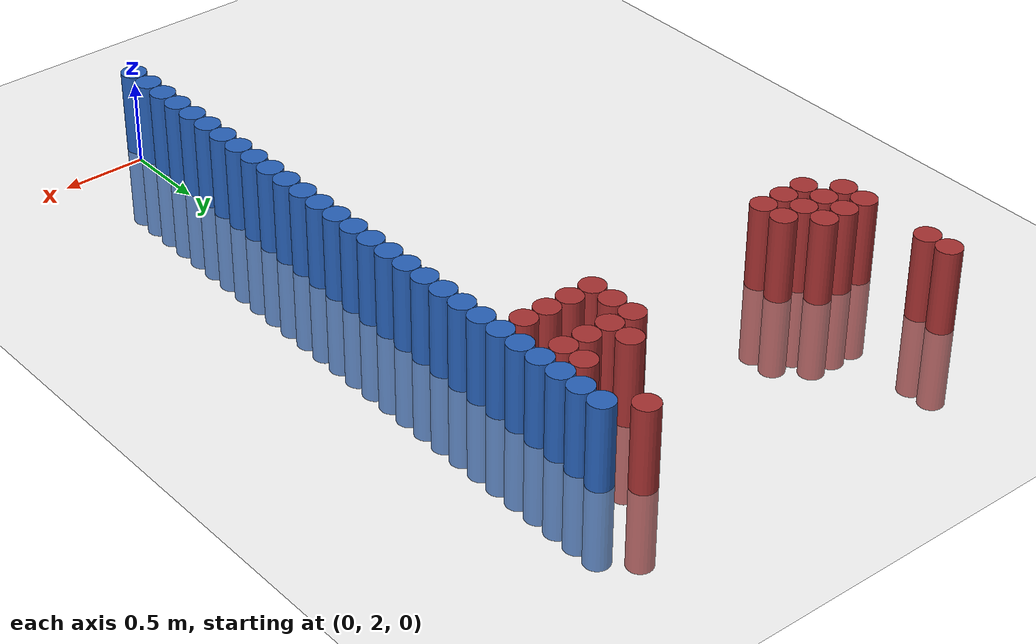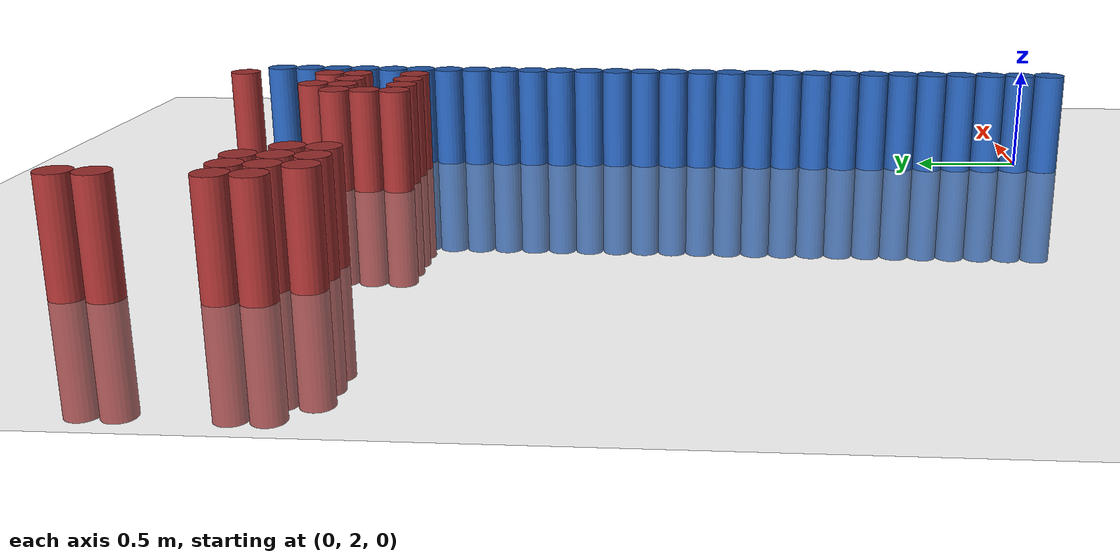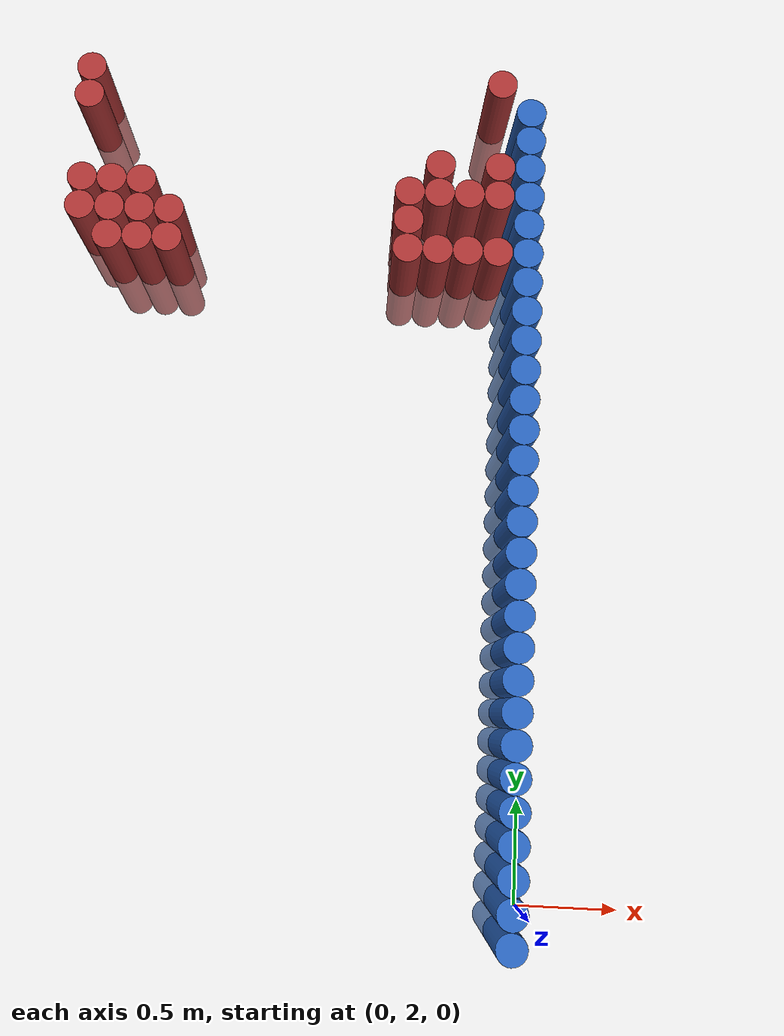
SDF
<sdf version="1.6">
 <world name="default">
  <model name="ground_plane">
   <static>1</static>
   <link name="link">
    <collision name="collision">
     <geometry><plane><normal>0 0 1</normal><size>100 100</size></plane></geometry>
     <surface><friction><ode><mu>100</mu><mu2>50</mu2></ode></friction></surface>
    </collision>
    <visual name="visual">
     <cast_shadows>0</cast_shadows>
     <geometry><plane><normal>0 0 1</normal><size>100 100</size></plane></geometry>
     <material>
      <script><uri>file://media/materials/scripts/gazebo.material</uri><name>Gazebo/Grey</name></script>
     </material>
    </visual>
   </link>
  </model>
  <model name="unit_cylinder_52">
   <static>1</static>
   <pose>-0.075000 1.875000 0.000000 0.000000 0.000000 0.000000</pose>
   <link name="link">
    <inertial>
     <mass>1</mass>
     <inertia><ixx>0.145833</ixx><ixy>0</ixy><ixz>0</ixz><iyy>0.145833</iyy><iyz>0</iyz><izz>0.125</izz></inertia>
    </inertial>
    <collision name="collision">
     <geometry><cylinder><radius>0.075000</radius><length>1</length></cylinder></geometry>
    </collision>
    <visual name="visual">
     <geometry><cylinder><radius>0.075000</radius><length>1</length></cylinder></geometry>
     <material>
      <ambient>0.152000 0.379000 0.720000 1</ambient>
      <diffuse>0.152000 0.379000 0.720000 1</diffuse>
     </material>
     <material>
      <script><name>Gazebo/Grey</name><uri>file://media/materials/scripts/gazebo.material</uri></script>
     </material>
    </visual>
   </link>
  </model>
  <model name="unit_cylinder_54">
   <static>1</static>
   <pose>-0.075000 2.025000 0.000000 0.000000 0.000000 0.000000</pose>
   <link name="link">
    <inertial>
     <mass>1</mass>
     <inertia><ixx>0.145833</ixx><ixy>0</ixy><ixz>0</ixz><iyy>0.145833</iyy><iyz>0</iyz><izz>0.125</izz></inertia>
    </inertial>
    <collision name="collision">
     <geometry><cylinder><radius>0.075000</radius><length>1</length></cylinder></geometry>
    </collision>
    <visual name="visual">
     <geometry><cylinder><radius>0.075000</radius><length>1</length></cylinder></geometry>
     <material>
      <ambient>0.152000 0.379000 0.720000 1</ambient>
      <diffuse>0.152000 0.379000 0.720000 1</diffuse>
     </material>
     <material>
      <script><name>Gazebo/Grey</name><uri>file://media/materials/scripts/gazebo.material</uri></script>
     </material>
    </visual>
   </link>
  </model>
  <model name="unit_cylinder_56">
   <static>1</static>
   <pose>-0.075000 2.175000 0.000000 0.000000 0.000000 0.000000</pose>
   <link name="link">
    <inertial>
     <mass>1</mass>
     <inertia><ixx>0.145833</ixx><ixy>0</ixy><ixz>0</ixz><iyy>0.145833</iyy><iyz>0</iyz><izz>0.125</izz></inertia>
    </inertial>
    <collision name="collision">
     <geometry><cylinder><radius>0.075000</radius><length>1</length></cylinder></geometry>
    </collision>
    <visual name="visual">
     <geometry><cylinder><radius>0.075000</radius><length>1</length></cylinder></geometry>
     <material>
      <ambient>0.152000 0.379000 0.720000 1</ambient>
      <diffuse>0.152000 0.379000 0.720000 1</diffuse>
     </material>
     <material>
      <script><name>Gazebo/Grey</name><uri>file://media/materials/scripts/gazebo.material</uri></script>
     </material>
    </visual>
   </link>
  </model>
  <model name="unit_cylinder_58">
   <static>1</static>
   <pose>-0.075000 2.325000 0.000000 0.000000 0.000000 0.000000</pose>
   <link name="link">
    <inertial>
     <mass>1</mass>
     <inertia><ixx>0.145833</ixx><ixy>0</ixy><ixz>0</ixz><iyy>0.145833</iyy><iyz>0</iyz><izz>0.125</izz></inertia>
    </inertial>
    <collision name="collision">
     <geometry><cylinder><radius>0.075000</radius><length>1</length></cylinder></geometry>
    </collision>
    <visual name="visual">
     <geometry><cylinder><radius>0.075000</radius><length>1</length></cylinder></geometry>
     <material>
      <ambient>0.152000 0.379000 0.720000 1</ambient>
      <diffuse>0.152000 0.379000 0.720000 1</diffuse>
     </material>
     <material>
      <script><name>Gazebo/Grey</name><uri>file://media/materials/scripts/gazebo.material</uri></script>
     </material>
    </visual>
   </link>
  </model>
  <model name="unit_cylinder_60">
   <static>1</static>
   <pose>-0.075000 2.475000 0.000000 0.000000 0.000000 0.000000</pose>
   <link name="link">
    <inertial>
     <mass>1</mass>
     <inertia><ixx>0.145833</ixx><ixy>0</ixy><ixz>0</ixz><iyy>0.145833</iyy><iyz>0</iyz><izz>0.125</izz></inertia>
    </inertial>
    <collision name="collision">
     <geometry><cylinder><radius>0.075000</radius><length>1</length></cylinder></geometry>
    </collision>
    <visual name="visual">
     <geometry><cylinder><radius>0.075000</radius><length>1</length></cylinder></geometry>
     <material>
      <ambient>0.152000 0.379000 0.720000 1</ambient>
      <diffuse>0.152000 0.379000 0.720000 1</diffuse>
     </material>
     <material>
      <script><name>Gazebo/Grey</name><uri>file://media/materials/scripts/gazebo.material</uri></script>
     </material>
    </visual>
   </link>
  </model>
  <model name="unit_cylinder_62">
   <static>1</static>
   <pose>-0.075000 2.625000 0.000000 0.000000 0.000000 0.000000</pose>
   <link name="link">
    <inertial>
     <mass>1</mass>
     <inertia><ixx>0.145833</ixx><ixy>0</ixy><ixz>0</ixz><iyy>0.145833</iyy><iyz>0</iyz><izz>0.125</izz></inertia>
    </inertial>
    <collision name="collision">
     <geometry><cylinder><radius>0.075000</radius><length>1</length></cylinder></geometry>
    </collision>
    <visual name="visual">
     <geometry><cylinder><radius>0.075000</radius><length>1</length></cylinder></geometry>
     <material>
      <ambient>0.152000 0.379000 0.720000 1</ambient>
      <diffuse>0.152000 0.379000 0.720000 1</diffuse>
     </material>
     <material>
      <script><name>Gazebo/Grey</name><uri>file://media/materials/scripts/gazebo.material</uri></script>
     </material>
    </visual>
   </link>
  </model>
  <model name="unit_cylinder_64">
   <static>1</static>
   <pose>-0.075000 2.775000 0.000000 0.000000 0.000000 0.000000</pose>
   <link name="link">
    <inertial>
     <mass>1</mass>
     <inertia><ixx>0.145833</ixx><ixy>0</ixy><ixz>0</ixz><iyy>0.145833</iyy><iyz>0</iyz><izz>0.125</izz></inertia>
    </inertial>
    <collision name="collision">
     <geometry><cylinder><radius>0.075000</radius><length>1</length></cylinder></geometry>
    </collision>
    <visual name="visual">
     <geometry><cylinder><radius>0.075000</radius><length>1</length></cylinder></geometry>
     <material>
      <ambient>0.152000 0.379000 0.720000 1</ambient>
      <diffuse>0.152000 0.379000 0.720000 1</diffuse>
     </material>
     <material>
      <script><name>Gazebo/Grey</name><uri>file://media/materials/scripts/gazebo.material</uri></script>
     </material>
    </visual>
   </link>
  </model>
  <model name="unit_cylinder_66">
   <static>1</static>
   <pose>-0.075000 2.925000 0.000000 0.000000 0.000000 0.000000</pose>
   <link name="link">
    <inertial>
     <mass>1</mass>
     <inertia><ixx>0.145833</ixx><ixy>0</ixy><ixz>0</ixz><iyy>0.145833</iyy><iyz>0</iyz><izz>0.125</izz></inertia>
    </inertial>
    <collision name="collision">
     <geometry><cylinder><radius>0.075000</radius><length>1</length></cylinder></geometry>
    </collision>
    <visual name="visual">
     <geometry><cylinder><radius>0.075000</radius><length>1</length></cylinder></geometry>
     <material>
      <ambient>0.152000 0.379000 0.720000 1</ambient>
      <diffuse>0.152000 0.379000 0.720000 1</diffuse>
     </material>
     <material>
      <script><name>Gazebo/Grey</name><uri>file://media/materials/scripts/gazebo.material</uri></script>
     </material>
    </visual>
   </link>
  </model>
  <model name="unit_cylinder_68">
   <static>1</static>
   <pose>-0.075000 3.075000 0.000000 0.000000 0.000000 0.000000</pose>
   <link name="link">
    <inertial>
     <mass>1</mass>
     <inertia><ixx>0.145833</ixx><ixy>0</ixy><ixz>0</ixz><iyy>0.145833</iyy><iyz>0</iyz><izz>0.125</izz></inertia>
    </inertial>
    <collision name="collision">
     <geometry><cylinder><radius>0.075000</radius><length>1</length></cylinder></geometry>
    </collision>
    <visual name="visual">
     <geometry><cylinder><radius>0.075000</radius><length>1</length></cylinder></geometry>
     <material>
      <ambient>0.152000 0.379000 0.720000 1</ambient>
      <diffuse>0.152000 0.379000 0.720000 1</diffuse>
     </material>
     <material>
      <script><name>Gazebo/Grey</name><uri>file://media/materials/scripts/gazebo.material</uri></script>
     </material>
    </visual>
   </link>
  </model>
  <model name="unit_cylinder_70">
   <static>1</static>
   <pose>-0.075000 3.225000 0.000000 0.000000 0.000000 0.000000</pose>
   <link name="link">
    <inertial>
     <mass>1</mass>
     <inertia><ixx>0.145833</ixx><ixy>0</ixy><ixz>0</ixz><iyy>0.145833</iyy><iyz>0</iyz><izz>0.125</izz></inertia>
    </inertial>
    <collision name="collision">
     <geometry><cylinder><radius>0.075000</radius><length>1</length></cylinder></geometry>
    </collision>
    <visual name="visual">
     <geometry><cylinder><radius>0.075000</radius><length>1</length></cylinder></geometry>
     <material>
      <ambient>0.152000 0.379000 0.720000 1</ambient>
      <diffuse>0.152000 0.379000 0.720000 1</diffuse>
     </material>
     <material>
      <script><name>Gazebo/Grey</name><uri>file://media/materials/scripts/gazebo.material</uri></script>
     </material>
    </visual>
   </link>
  </model>
  <model name="unit_cylinder_72">
   <static>1</static>
   <pose>-0.075000 3.375000 0.000000 0.000000 0.000000 0.000000</pose>
   <link name="link">
    <inertial>
     <mass>1</mass>
     <inertia><ixx>0.145833</ixx><ixy>0</ixy><ixz>0</ixz><iyy>0.145833</iyy><iyz>0</iyz><izz>0.125</izz></inertia>
    </inertial>
    <collision name="collision">
     <geometry><cylinder><radius>0.075000</radius><length>1</length></cylinder></geometry>
    </collision>
    <visual name="visual">
     <geometry><cylinder><radius>0.075000</radius><length>1</length></cylinder></geometry>
     <material>
      <ambient>0.152000 0.379000 0.720000 1</ambient>
      <diffuse>0.152000 0.379000 0.720000 1</diffuse>
     </material>
     <material>
      <script><name>Gazebo/Grey</name><uri>file://media/materials/scripts/gazebo.material</uri></script>
     </material>
    </visual>
   </link>
  </model>
  <model name="unit_cylinder_74">
   <static>1</static>
   <pose>-0.075000 3.525000 0.000000 0.000000 0.000000 0.000000</pose>
   <link name="link">
    <inertial>
     <mass>1</mass>
     <inertia><ixx>0.145833</ixx><ixy>0</ixy><ixz>0</ixz><iyy>0.145833</iyy><iyz>0</iyz><izz>0.125</izz></inertia>
    </inertial>
    <collision name="collision">
     <geometry><cylinder><radius>0.075000</radius><length>1</length></cylinder></geometry>
    </collision>
    <visual name="visual">
     <geometry><cylinder><radius>0.075000</radius><length>1</length></cylinder></geometry>
     <material>
      <ambient>0.152000 0.379000 0.720000 1</ambient>
      <diffuse>0.152000 0.379000 0.720000 1</diffuse>
     </material>
     <material>
      <script><name>Gazebo/Grey</name><uri>file://media/materials/scripts/gazebo.material</uri></script>
     </material>
    </visual>
   </link>
  </model>
  <model name="unit_cylinder_76">
   <static>1</static>
   <pose>-0.075000 3.675000 0.000000 0.000000 0.000000 0.000000</pose>
   <link name="link">
    <inertial>
     <mass>1</mass>
     <inertia><ixx>0.145833</ixx><ixy>0</ixy><ixz>0</ixz><iyy>0.145833</iyy><iyz>0</iyz><izz>0.125</izz></inertia>
    </inertial>
    <collision name="collision">
     <geometry><cylinder><radius>0.075000</radius><length>1</length></cylinder></geometry>
    </collision>
    <visual name="visual">
     <geometry><cylinder><radius>0.075000</radius><length>1</length></cylinder></geometry>
     <material>
      <ambient>0.152000 0.379000 0.720000 1</ambient>
      <diffuse>0.152000 0.379000 0.720000 1</diffuse>
     </material>
     <material>
      <script><name>Gazebo/Grey</name><uri>file://media/materials/scripts/gazebo.material</uri></script>
     </material>
    </visual>
   </link>
  </model>
  <model name="unit_cylinder_78">
   <static>1</static>
   <pose>-0.075000 3.825000 0.000000 0.000000 0.000000 0.000000</pose>
   <link name="link">
    <inertial>
     <mass>1</mass>
     <inertia><ixx>0.145833</ixx><ixy>0</ixy><ixz>0</ixz><iyy>0.145833</iyy><iyz>0</iyz><izz>0.125</izz></inertia>
    </inertial>
    <collision name="collision">
     <geometry><cylinder><radius>0.075000</radius><length>1</length></cylinder></geometry>
    </collision>
    <visual name="visual">
     <geometry><cylinder><radius>0.075000</radius><length>1</length></cylinder></geometry>
     <material>
      <ambient>0.152000 0.379000 0.720000 1</ambient>
      <diffuse>0.152000 0.379000 0.720000 1</diffuse>
     </material>
     <material>
      <script><name>Gazebo/Grey</name><uri>file://media/materials/scripts/gazebo.material</uri></script>
     </material>
    </visual>
   </link>
  </model>
  <model name="unit_cylinder_80">
   <static>1</static>
   <pose>-0.075000 3.975000 0.000000 0.000000 0.000000 0.000000</pose>
   <link name="link">
    <inertial>
     <mass>1</mass>
     <inertia><ixx>0.145833</ixx><ixy>0</ixy><ixz>0</ixz><iyy>0.145833</iyy><iyz>0</iyz><izz>0.125</izz></inertia>
    </inertial>
    <collision name="collision">
     <geometry><cylinder><radius>0.075000</radius><length>1</length></cylinder></geometry>
    </collision>
    <visual name="visual">
     <geometry><cylinder><radius>0.075000</radius><length>1</length></cylinder></geometry>
     <material>
      <ambient>0.152000 0.379000 0.720000 1</ambient>
      <diffuse>0.152000 0.379000 0.720000 1</diffuse>
     </material>
     <material>
      <script><name>Gazebo/Grey</name><uri>file://media/materials/scripts/gazebo.material</uri></script>
     </material>
    </visual>
   </link>
  </model>
  <model name="unit_cylinder_82">
   <static>1</static>
   <pose>-0.075000 4.125000 0.000000 0.000000 0.000000 0.000000</pose>
   <link name="link">
    <inertial>
     <mass>1</mass>
     <inertia><ixx>0.145833</ixx><ixy>0</ixy><ixz>0</ixz><iyy>0.145833</iyy><iyz>0</iyz><izz>0.125</izz></inertia>
    </inertial>
    <collision name="collision">
     <geometry><cylinder><radius>0.075000</radius><length>1</length></cylinder></geometry>
    </collision>
    <visual name="visual">
     <geometry><cylinder><radius>0.075000</radius><length>1</length></cylinder></geometry>
     <material>
      <ambient>0.152000 0.379000 0.720000 1</ambient>
      <diffuse>0.152000 0.379000 0.720000 1</diffuse>
     </material>
     <material>
      <script><name>Gazebo/Grey</name><uri>file://media/materials/scripts/gazebo.material</uri></script>
     </material>
    </visual>
   </link>
  </model>
  <model name="unit_cylinder_84">
   <static>1</static>
   <pose>-0.075000 4.275000 0.000000 0.000000 0.000000 0.000000</pose>
   <link name="link">
    <inertial>
     <mass>1</mass>
     <inertia><ixx>0.145833</ixx><ixy>0</ixy><ixz>0</ixz><iyy>0.145833</iyy><iyz>0</iyz><izz>0.125</izz></inertia>
    </inertial>
    <collision name="collision">
     <geometry><cylinder><radius>0.075000</radius><length>1</length></cylinder></geometry>
    </collision>
    <visual name="visual">
     <geometry><cylinder><radius>0.075000</radius><length>1</length></cylinder></geometry>
     <material>
      <ambient>0.152000 0.379000 0.720000 1</ambient>
      <diffuse>0.152000 0.379000 0.720000 1</diffuse>
     </material>
     <material>
      <script><name>Gazebo/Grey</name><uri>file://media/materials/scripts/gazebo.material</uri></script>
     </material>
    </visual>
   </link>
  </model>
  <model name="unit_cylinder_86">
   <static>1</static>
   <pose>-0.075000 4.425000 0.000000 0.000000 0.000000 0.000000</pose>
   <link name="link">
    <inertial>
     <mass>1</mass>
     <inertia><ixx>0.145833</ixx><ixy>0</ixy><ixz>0</ixz><iyy>0.145833</iyy><iyz>0</iyz><izz>0.125</izz></inertia>
    </inertial>
    <collision name="collision">
     <geometry><cylinder><radius>0.075000</radius><length>1</length></cylinder></geometry>
    </collision>
    <visual name="visual">
     <geometry><cylinder><radius>0.075000</radius><length>1</length></cylinder></geometry>
     <material>
      <ambient>0.152000 0.379000 0.720000 1</ambient>
      <diffuse>0.152000 0.379000 0.720000 1</diffuse>
     </material>
     <material>
      <script><name>Gazebo/Grey</name><uri>file://media/materials/scripts/gazebo.material</uri></script>
     </material>
    </visual>
   </link>
  </model>
  <model name="unit_cylinder_88">
   <static>1</static>
   <pose>-0.075000 4.575000 0.000000 0.000000 0.000000 0.000000</pose>
   <link name="link">
    <inertial>
     <mass>1</mass>
     <inertia><ixx>0.145833</ixx><ixy>0</ixy><ixz>0</ixz><iyy>0.145833</iyy><iyz>0</iyz><izz>0.125</izz></inertia>
    </inertial>
    <collision name="collision">
     <geometry><cylinder><radius>0.075000</radius><length>1</length></cylinder></geometry>
    </collision>
    <visual name="visual">
     <geometry><cylinder><radius>0.075000</radius><length>1</length></cylinder></geometry>
     <material>
      <ambient>0.152000 0.379000 0.720000 1</ambient>
      <diffuse>0.152000 0.379000 0.720000 1</diffuse>
     </material>
     <material>
      <script><name>Gazebo/Grey</name><uri>file://media/materials/scripts/gazebo.material</uri></script>
     </material>
    </visual>
   </link>
  </model>
  <model name="unit_cylinder_90">
   <static>1</static>
   <pose>-0.075000 4.725000 0.000000 0.000000 0.000000 0.000000</pose>
   <link name="link">
    <inertial>
     <mass>1</mass>
     <inertia><ixx>0.145833</ixx><ixy>0</ixy><ixz>0</ixz><iyy>0.145833</iyy><iyz>0</iyz><izz>0.125</izz></inertia>
    </inertial>
    <collision name="collision">
     <geometry><cylinder><radius>0.075000</radius><length>1</length></cylinder></geometry>
    </collision>
    <visual name="visual">
     <geometry><cylinder><radius>0.075000</radius><length>1</length></cylinder></geometry>
     <material>
      <ambient>0.152000 0.379000 0.720000 1</ambient>
      <diffuse>0.152000 0.379000 0.720000 1</diffuse>
     </material>
     <material>
      <script><name>Gazebo/Grey</name><uri>file://media/materials/scripts/gazebo.material</uri></script>
     </material>
    </visual>
   </link>
  </model>
  <model name="unit_cylinder_92">
   <static>1</static>
   <pose>-0.075000 4.875000 0.000000 0.000000 0.000000 0.000000</pose>
   <link name="link">
    <inertial>
     <mass>1</mass>
     <inertia><ixx>0.145833</ixx><ixy>0</ixy><ixz>0</ixz><iyy>0.145833</iyy><iyz>0</iyz><izz>0.125</izz></inertia>
    </inertial>
    <collision name="collision">
     <geometry><cylinder><radius>0.075000</radius><length>1</length></cylinder></geometry>
    </collision>
    <visual name="visual">
     <geometry><cylinder><radius>0.075000</radius><length>1</length></cylinder></geometry>
     <material>
      <ambient>0.152000 0.379000 0.720000 1</ambient>
      <diffuse>0.152000 0.379000 0.720000 1</diffuse>
     </material>
     <material>
      <script><name>Gazebo/Grey</name><uri>file://media/materials/scripts/gazebo.material</uri></script>
     </material>
    </visual>
   </link>
  </model>
  <model name="unit_cylinder_94">
   <static>1</static>
   <pose>-0.075000 5.025000 0.000000 0.000000 0.000000 0.000000</pose>
   <link name="link">
    <inertial>
     <mass>1</mass>
     <inertia><ixx>0.145833</ixx><ixy>0</ixy><ixz>0</ixz><iyy>0.145833</iyy><iyz>0</iyz><izz>0.125</izz></inertia>
    </inertial>
    <collision name="collision">
     <geometry><cylinder><radius>0.075000</radius><length>1</length></cylinder></geometry>
    </collision>
    <visual name="visual">
     <geometry><cylinder><radius>0.075000</radius><length>1</length></cylinder></geometry>
     <material>
      <ambient>0.152000 0.379000 0.720000 1</ambient>
      <diffuse>0.152000 0.379000 0.720000 1</diffuse>
     </material>
     <material>
      <script><name>Gazebo/Grey</name><uri>file://media/materials/scripts/gazebo.material</uri></script>
     </material>
    </visual>
   </link>
  </model>
  <model name="unit_cylinder_220">
   <static>1</static>
   <pose>-2.325000 5.325000 0.000000 0.000000 0.000000 0.000000</pose>
   <link name="link">
    <inertial>
     <mass>1</mass>
     <inertia><ixx>0.145833</ixx><ixy>0</ixy><ixz>0</ixz><iyy>0.145833</iyy><iyz>0</iyz><izz>0.125</izz></inertia>
    </inertial>
    <collision name="collision">
     <geometry><cylinder><radius>0.075000</radius><length>1</length></cylinder></geometry>
    </collision>
    <visual name="visual">
     <geometry><cylinder><radius>0.075000</radius><length>1</length></cylinder></geometry>
     <material>
      <ambient>0.648000 0.192000 0.192000 1</ambient>
      <diffuse>0.648000 0.192000 0.192000 1</diffuse>
     </material>
     <material>
      <script><name>Gazebo/Grey</name><uri>file://media/materials/scripts/gazebo.material</uri></script>
     </material>
    </visual>
   </link>
  </model>
  <model name="unit_cylinder_221">
   <static>1</static>
   <pose>-2.325000 5.475000 0.000000 0.000000 0.000000 0.000000</pose>
   <link name="link">
    <inertial>
     <mass>1</mass>
     <inertia><ixx>0.145833</ixx><ixy>0</ixy><ixz>0</ixz><iyy>0.145833</iyy><iyz>0</iyz><izz>0.125</izz></inertia>
    </inertial>
    <collision name="collision">
     <geometry><cylinder><radius>0.075000</radius><length>1</length></cylinder></geometry>
    </collision>
    <visual name="visual">
     <geometry><cylinder><radius>0.075000</radius><length>1</length></cylinder></geometry>
     <material>
      <ambient>0.648000 0.192000 0.192000 1</ambient>
      <diffuse>0.648000 0.192000 0.192000 1</diffuse>
     </material>
     <material>
      <script><name>Gazebo/Grey</name><uri>file://media/materials/scripts/gazebo.material</uri></script>
     </material>
    </visual>
   </link>
  </model>
  <model name="unit_cylinder_222">
   <static>1</static>
   <pose>-2.325000 5.925000 0.000000 0.000000 0.000000 0.000000</pose>
   <link name="link">
    <inertial>
     <mass>1</mass>
     <inertia><ixx>0.145833</ixx><ixy>0</ixy><ixz>0</ixz><iyy>0.145833</iyy><iyz>0</iyz><izz>0.125</izz></inertia>
    </inertial>
    <collision name="collision">
     <geometry><cylinder><radius>0.075000</radius><length>1</length></cylinder></geometry>
    </collision>
    <visual name="visual">
     <geometry><cylinder><radius>0.075000</radius><length>1</length></cylinder></geometry>
     <material>
      <ambient>0.648000 0.192000 0.192000 1</ambient>
      <diffuse>0.648000 0.192000 0.192000 1</diffuse>
     </material>
     <material>
      <script><name>Gazebo/Grey</name><uri>file://media/materials/scripts/gazebo.material</uri></script>
     </material>
    </visual>
   </link>
  </model>
  <model name="unit_cylinder_223">
   <static>1</static>
   <pose>-2.325000 6.075000 0.000000 0.000000 0.000000 0.000000</pose>
   <link name="link">
    <inertial>
     <mass>1</mass>
     <inertia><ixx>0.145833</ixx><ixy>0</ixy><ixz>0</ixz><iyy>0.145833</iyy><iyz>0</iyz><izz>0.125</izz></inertia>
    </inertial>
    <collision name="collision">
     <geometry><cylinder><radius>0.075000</radius><length>1</length></cylinder></geometry>
    </collision>
    <visual name="visual">
     <geometry><cylinder><radius>0.075000</radius><length>1</length></cylinder></geometry>
     <material>
      <ambient>0.648000 0.192000 0.192000 1</ambient>
      <diffuse>0.648000 0.192000 0.192000 1</diffuse>
     </material>
     <material>
      <script><name>Gazebo/Grey</name><uri>file://media/materials/scripts/gazebo.material</uri></script>
     </material>
    </visual>
   </link>
  </model>
  <model name="unit_cylinder_224">
   <static>1</static>
   <pose>-2.175000 5.175000 0.000000 0.000000 0.000000 0.000000</pose>
   <link name="link">
    <inertial>
     <mass>1</mass>
     <inertia><ixx>0.145833</ixx><ixy>0</ixy><ixz>0</ixz><iyy>0.145833</iyy><iyz>0</iyz><izz>0.125</izz></inertia>
    </inertial>
    <collision name="collision">
     <geometry><cylinder><radius>0.075000</radius><length>1</length></cylinder></geometry>
    </collision>
    <visual name="visual">
     <geometry><cylinder><radius>0.075000</radius><length>1</length></cylinder></geometry>
     <material>
      <ambient>0.648000 0.192000 0.192000 1</ambient>
      <diffuse>0.648000 0.192000 0.192000 1</diffuse>
     </material>
     <material>
      <script><name>Gazebo/Grey</name><uri>file://media/materials/scripts/gazebo.material</uri></script>
     </material>
    </visual>
   </link>
  </model>
  <model name="unit_cylinder_225">
   <static>1</static>
   <pose>-2.175000 5.325000 0.000000 0.000000 0.000000 0.000000</pose>
   <link name="link">
    <inertial>
     <mass>1</mass>
     <inertia><ixx>0.145833</ixx><ixy>0</ixy><ixz>0</ixz><iyy>0.145833</iyy><iyz>0</iyz><izz>0.125</izz></inertia>
    </inertial>
    <collision name="collision">
     <geometry><cylinder><radius>0.075000</radius><length>1</length></cylinder></geometry>
    </collision>
    <visual name="visual">
     <geometry><cylinder><radius>0.075000</radius><length>1</length></cylinder></geometry>
     <material>
      <ambient>0.648000 0.192000 0.192000 1</ambient>
      <diffuse>0.648000 0.192000 0.192000 1</diffuse>
     </material>
     <material>
      <script><name>Gazebo/Grey</name><uri>file://media/materials/scripts/gazebo.material</uri></script>
     </material>
    </visual>
   </link>
  </model>
  <model name="unit_cylinder_226">
   <static>1</static>
   <pose>-2.175000 5.475000 0.000000 0.000000 0.000000 0.000000</pose>
   <link name="link">
    <inertial>
     <mass>1</mass>
     <inertia><ixx>0.145833</ixx><ixy>0</ixy><ixz>0</ixz><iyy>0.145833</iyy><iyz>0</iyz><izz>0.125</izz></inertia>
    </inertial>
    <collision name="collision">
     <geometry><cylinder><radius>0.075000</radius><length>1</length></cylinder></geometry>
    </collision>
    <visual name="visual">
     <geometry><cylinder><radius>0.075000</radius><length>1</length></cylinder></geometry>
     <material>
      <ambient>0.648000 0.192000 0.192000 1</ambient>
      <diffuse>0.648000 0.192000 0.192000 1</diffuse>
     </material>
     <material>
      <script><name>Gazebo/Grey</name><uri>file://media/materials/scripts/gazebo.material</uri></script>
     </material>
    </visual>
   </link>
  </model>
  <model name="unit_cylinder_227">
   <static>1</static>
   <pose>-2.025000 5.175000 0.000000 0.000000 0.000000 0.000000</pose>
   <link name="link">
    <inertial>
     <mass>1</mass>
     <inertia><ixx>0.145833</ixx><ixy>0</ixy><ixz>0</ixz><iyy>0.145833</iyy><iyz>0</iyz><izz>0.125</izz></inertia>
    </inertial>
    <collision name="collision">
     <geometry><cylinder><radius>0.075000</radius><length>1</length></cylinder></geometry>
    </collision>
    <visual name="visual">
     <geometry><cylinder><radius>0.075000</radius><length>1</length></cylinder></geometry>
     <material>
      <ambient>0.648000 0.192000 0.192000 1</ambient>
      <diffuse>0.648000 0.192000 0.192000 1</diffuse>
     </material>
     <material>
      <script><name>Gazebo/Grey</name><uri>file://media/materials/scripts/gazebo.material</uri></script>
     </material>
    </visual>
   </link>
  </model>
  <model name="unit_cylinder_228">
   <static>1</static>
   <pose>-2.025000 5.325000 0.000000 0.000000 0.000000 0.000000</pose>
   <link name="link">
    <inertial>
     <mass>1</mass>
     <inertia><ixx>0.145833</ixx><ixy>0</ixy><ixz>0</ixz><iyy>0.145833</iyy><iyz>0</iyz><izz>0.125</izz></inertia>
    </inertial>
    <collision name="collision">
     <geometry><cylinder><radius>0.075000</radius><length>1</length></cylinder></geometry>
    </collision>
    <visual name="visual">
     <geometry><cylinder><radius>0.075000</radius><length>1</length></cylinder></geometry>
     <material>
      <ambient>0.648000 0.192000 0.192000 1</ambient>
      <diffuse>0.648000 0.192000 0.192000 1</diffuse>
     </material>
     <material>
      <script><name>Gazebo/Grey</name><uri>file://media/materials/scripts/gazebo.material</uri></script>
     </material>
    </visual>
   </link>
  </model>
  <model name="unit_cylinder_229">
   <static>1</static>
   <pose>-2.025000 5.475000 0.000000 0.000000 0.000000 0.000000</pose>
   <link name="link">
    <inertial>
     <mass>1</mass>
     <inertia><ixx>0.145833</ixx><ixy>0</ixy><ixz>0</ixz><iyy>0.145833</iyy><iyz>0</iyz><izz>0.125</izz></inertia>
    </inertial>
    <collision name="collision">
     <geometry><cylinder><radius>0.075000</radius><length>1</length></cylinder></geometry>
    </collision>
    <visual name="visual">
     <geometry><cylinder><radius>0.075000</radius><length>1</length></cylinder></geometry>
     <material>
      <ambient>0.648000 0.192000 0.192000 1</ambient>
      <diffuse>0.648000 0.192000 0.192000 1</diffuse>
     </material>
     <material>
      <script><name>Gazebo/Grey</name><uri>file://media/materials/scripts/gazebo.material</uri></script>
     </material>
    </visual>
   </link>
  </model>
  <model name="unit_cylinder_235">
   <static>1</static>
   <pose>-1.875000 5.175000 0.000000 0.000000 0.000000 0.000000</pose>
   <link name="link">
    <inertial>
     <mass>1</mass>
     <inertia><ixx>0.145833</ixx><ixy>0</ixy><ixz>0</ixz><iyy>0.145833</iyy><iyz>0</iyz><izz>0.125</izz></inertia>
    </inertial>
    <collision name="collision">
     <geometry><cylinder><radius>0.075000</radius><length>1</length></cylinder></geometry>
    </collision>
    <visual name="visual">
     <geometry><cylinder><radius>0.075000</radius><length>1</length></cylinder></geometry>
     <material>
      <ambient>0.648000 0.192000 0.192000 1</ambient>
      <diffuse>0.648000 0.192000 0.192000 1</diffuse>
     </material>
     <material>
      <script><name>Gazebo/Grey</name><uri>file://media/materials/scripts/gazebo.material</uri></script>
     </material>
    </visual>
   </link>
  </model>
  <model name="unit_cylinder_236">
   <static>1</static>
   <pose>-1.875000 5.325000 0.000000 0.000000 0.000000 0.000000</pose>
   <link name="link">
    <inertial>
     <mass>1</mass>
     <inertia><ixx>0.145833</ixx><ixy>0</ixy><ixz>0</ixz><iyy>0.145833</iyy><iyz>0</iyz><izz>0.125</izz></inertia>
    </inertial>
    <collision name="collision">
     <geometry><cylinder><radius>0.075000</radius><length>1</length></cylinder></geometry>
    </collision>
    <visual name="visual">
     <geometry><cylinder><radius>0.075000</radius><length>1</length></cylinder></geometry>
     <material>
      <ambient>0.648000 0.192000 0.192000 1</ambient>
      <diffuse>0.648000 0.192000 0.192000 1</diffuse>
     </material>
     <material>
      <script><name>Gazebo/Grey</name><uri>file://media/materials/scripts/gazebo.material</uri></script>
     </material>
    </visual>
   </link>
  </model>
  <model name="unit_cylinder_286">
   <static>1</static>
   <pose>-0.675000 5.175000 0.000000 0.000000 0.000000 0.000000</pose>
   <link name="link">
    <inertial>
     <mass>1</mass>
     <inertia><ixx>0.145833</ixx><ixy>0</ixy><ixz>0</ixz><iyy>0.145833</iyy><iyz>0</iyz><izz>0.125</izz></inertia>
    </inertial>
    <collision name="collision">
     <geometry><cylinder><radius>0.075000</radius><length>1</length></cylinder></geometry>
    </collision>
    <visual name="visual">
     <geometry><cylinder><radius>0.075000</radius><length>1</length></cylinder></geometry>
     <material>
      <ambient>0.648000 0.192000 0.192000 1</ambient>
      <diffuse>0.648000 0.192000 0.192000 1</diffuse>
     </material>
     <material>
      <script><name>Gazebo/Grey</name><uri>file://media/materials/scripts/gazebo.material</uri></script>
     </material>
    </visual>
   </link>
  </model>
  <model name="unit_cylinder_287">
   <static>1</static>
   <pose>-0.675000 5.325000 0.000000 0.000000 0.000000 0.000000</pose>
   <link name="link">
    <inertial>
     <mass>1</mass>
     <inertia><ixx>0.145833</ixx><ixy>0</ixy><ixz>0</ixz><iyy>0.145833</iyy><iyz>0</iyz><izz>0.125</izz></inertia>
    </inertial>
    <collision name="collision">
     <geometry><cylinder><radius>0.075000</radius><length>1</length></cylinder></geometry>
    </collision>
    <visual name="visual">
     <geometry><cylinder><radius>0.075000</radius><length>1</length></cylinder></geometry>
     <material>
      <ambient>0.648000 0.192000 0.192000 1</ambient>
      <diffuse>0.648000 0.192000 0.192000 1</diffuse>
     </material>
     <material>
      <script><name>Gazebo/Grey</name><uri>file://media/materials/scripts/gazebo.material</uri></script>
     </material>
    </visual>
   </link>
  </model>
  <model name="unit_cylinder_288">
   <static>1</static>
   <pose>-0.675000 5.475000 0.000000 0.000000 0.000000 0.000000</pose>
   <link name="link">
    <inertial>
     <mass>1</mass>
     <inertia><ixx>0.145833</ixx><ixy>0</ixy><ixz>0</ixz><iyy>0.145833</iyy><iyz>0</iyz><izz>0.125</izz></inertia>
    </inertial>
    <collision name="collision">
     <geometry><cylinder><radius>0.075000</radius><length>1</length></cylinder></geometry>
    </collision>
    <visual name="visual">
     <geometry><cylinder><radius>0.075000</radius><length>1</length></cylinder></geometry>
     <material>
      <ambient>0.648000 0.192000 0.192000 1</ambient>
      <diffuse>0.648000 0.192000 0.192000 1</diffuse>
     </material>
     <material>
      <script><name>Gazebo/Grey</name><uri>file://media/materials/scripts/gazebo.material</uri></script>
     </material>
    </visual>
   </link>
  </model>
  <model name="unit_cylinder_298">
   <static>1</static>
   <pose>-0.525000 5.175000 0.000000 0.000000 0.000000 0.000000</pose>
   <link name="link">
    <inertial>
     <mass>1</mass>
     <inertia><ixx>0.145833</ixx><ixy>0</ixy><ixz>0</ixz><iyy>0.145833</iyy><iyz>0</iyz><izz>0.125</izz></inertia>
    </inertial>
    <collision name="collision">
     <geometry><cylinder><radius>0.075000</radius><length>1</length></cylinder></geometry>
    </collision>
    <visual name="visual">
     <geometry><cylinder><radius>0.075000</radius><length>1</length></cylinder></geometry>
     <material>
      <ambient>0.648000 0.192000 0.192000 1</ambient>
      <diffuse>0.648000 0.192000 0.192000 1</diffuse>
     </material>
     <material>
      <script><name>Gazebo/Grey</name><uri>file://media/materials/scripts/gazebo.material</uri></script>
     </material>
    </visual>
   </link>
  </model>
  <model name="unit_cylinder_299">
   <static>1</static>
   <pose>-0.525000 5.475000 0.000000 0.000000 0.000000 0.000000</pose>
   <link name="link">
    <inertial>
     <mass>1</mass>
     <inertia><ixx>0.145833</ixx><ixy>0</ixy><ixz>0</ixz><iyy>0.145833</iyy><iyz>0</iyz><izz>0.125</izz></inertia>
    </inertial>
    <collision name="collision">
     <geometry><cylinder><radius>0.075000</radius><length>1</length></cylinder></geometry>
    </collision>
    <visual name="visual">
     <geometry><cylinder><radius>0.075000</radius><length>1</length></cylinder></geometry>
     <material>
      <ambient>0.648000 0.192000 0.192000 1</ambient>
      <diffuse>0.648000 0.192000 0.192000 1</diffuse>
     </material>
     <material>
      <script><name>Gazebo/Grey</name><uri>file://media/materials/scripts/gazebo.material</uri></script>
     </material>
    </visual>
   </link>
  </model>
  <model name="unit_cylinder_300">
   <static>1</static>
   <pose>-0.525000 5.625000 0.000000 0.000000 0.000000 0.000000</pose>
   <link name="link">
    <inertial>
     <mass>1</mass>
     <inertia><ixx>0.145833</ixx><ixy>0</ixy><ixz>0</ixz><iyy>0.145833</iyy><iyz>0</iyz><izz>0.125</izz></inertia>
    </inertial>
    <collision name="collision">
     <geometry><cylinder><radius>0.075000</radius><length>1</length></cylinder></geometry>
    </collision>
    <visual name="visual">
     <geometry><cylinder><radius>0.075000</radius><length>1</length></cylinder></geometry>
     <material>
      <ambient>0.648000 0.192000 0.192000 1</ambient>
      <diffuse>0.648000 0.192000 0.192000 1</diffuse>
     </material>
     <material>
      <script><name>Gazebo/Grey</name><uri>file://media/materials/scripts/gazebo.material</uri></script>
     </material>
    </visual>
   </link>
  </model>
  <model name="unit_cylinder_309">
   <static>1</static>
   <pose>-0.375000 5.175000 0.000000 0.000000 0.000000 0.000000</pose>
   <link name="link">
    <inertial>
     <mass>1</mass>
     <inertia><ixx>0.145833</ixx><ixy>0</ixy><ixz>0</ixz><iyy>0.145833</iyy><iyz>0</iyz><izz>0.125</izz></inertia>
    </inertial>
    <collision name="collision">
     <geometry><cylinder><radius>0.075000</radius><length>1</length></cylinder></geometry>
    </collision>
    <visual name="visual">
     <geometry><cylinder><radius>0.075000</radius><length>1</length></cylinder></geometry>
     <material>
      <ambient>0.648000 0.192000 0.192000 1</ambient>
      <diffuse>0.648000 0.192000 0.192000 1</diffuse>
     </material>
     <material>
      <script><name>Gazebo/Grey</name><uri>file://media/materials/scripts/gazebo.material</uri></script>
     </material>
    </visual>
   </link>
  </model>
  <model name="unit_cylinder_310">
   <static>1</static>
   <pose>-0.375000 5.475000 0.000000 0.000000 0.000000 0.000000</pose>
   <link name="link">
    <inertial>
     <mass>1</mass>
     <inertia><ixx>0.145833</ixx><ixy>0</ixy><ixz>0</ixz><iyy>0.145833</iyy><iyz>0</iyz><izz>0.125</izz></inertia>
    </inertial>
    <collision name="collision">
     <geometry><cylinder><radius>0.075000</radius><length>1</length></cylinder></geometry>
    </collision>
    <visual name="visual">
     <geometry><cylinder><radius>0.075000</radius><length>1</length></cylinder></geometry>
     <material>
      <ambient>0.648000 0.192000 0.192000 1</ambient>
      <diffuse>0.648000 0.192000 0.192000 1</diffuse>
     </material>
     <material>
      <script><name>Gazebo/Grey</name><uri>file://media/materials/scripts/gazebo.material</uri></script>
     </material>
    </visual>
   </link>
  </model>
  <model name="unit_cylinder_319">
   <static>1</static>
   <pose>-0.225000 5.175000 0.000000 0.000000 0.000000 0.000000</pose>
   <link name="link">
    <inertial>
     <mass>1</mass>
     <inertia><ixx>0.145833</ixx><ixy>0</ixy><ixz>0</ixz><iyy>0.145833</iyy><iyz>0</iyz><izz>0.125</izz></inertia>
    </inertial>
    <collision name="collision">
     <geometry><cylinder><radius>0.075000</radius><length>1</length></cylinder></geometry>
    </collision>
    <visual name="visual">
     <geometry><cylinder><radius>0.075000</radius><length>1</length></cylinder></geometry>
     <material>
      <ambient>0.648000 0.192000 0.192000 1</ambient>
      <diffuse>0.648000 0.192000 0.192000 1</diffuse>
     </material>
     <material>
      <script><name>Gazebo/Grey</name><uri>file://media/materials/scripts/gazebo.material</uri></script>
     </material>
    </visual>
   </link>
  </model>
  <model name="unit_cylinder_320">
   <static>1</static>
   <pose>-0.225000 5.475000 0.000000 0.000000 0.000000 0.000000</pose>
   <link name="link">
    <inertial>
     <mass>1</mass>
     <inertia><ixx>0.145833</ixx><ixy>0</ixy><ixz>0</ixz><iyy>0.145833</iyy><iyz>0</iyz><izz>0.125</izz></inertia>
    </inertial>
    <collision name="collision">
     <geometry><cylinder><radius>0.075000</radius><length>1</length></cylinder></geometry>
    </collision>
    <visual name="visual">
     <geometry><cylinder><radius>0.075000</radius><length>1</length></cylinder></geometry>
     <material>
      <ambient>0.648000 0.192000 0.192000 1</ambient>
      <diffuse>0.648000 0.192000 0.192000 1</diffuse>
     </material>
     <material>
      <script><name>Gazebo/Grey</name><uri>file://media/materials/scripts/gazebo.material</uri></script>
     </material>
    </visual>
   </link>
  </model>
  <model name="unit_cylinder_321">
   <static>1</static>
   <pose>-0.225000 5.625000 0.000000 0.000000 0.000000 0.000000</pose>
   <link name="link">
    <inertial>
     <mass>1</mass>
     <inertia><ixx>0.145833</ixx><ixy>0</ixy><ixz>0</ixz><iyy>0.145833</iyy><iyz>0</iyz><izz>0.125</izz></inertia>
    </inertial>
    <collision name="collision">
     <geometry><cylinder><radius>0.075000</radius><length>1</length></cylinder></geometry>
    </collision>
    <visual name="visual">
     <geometry><cylinder><radius>0.075000</radius><length>1</length></cylinder></geometry>
     <material>
      <ambient>0.648000 0.192000 0.192000 1</ambient>
      <diffuse>0.648000 0.192000 0.192000 1</diffuse>
     </material>
     <material>
      <script><name>Gazebo/Grey</name><uri>file://media/materials/scripts/gazebo.material</uri></script>
     </material>
    </visual>
   </link>
  </model>
  <model name="unit_cylinder_322">
   <static>1</static>
   <pose>-0.225000 6.075000 0.000000 0.000000 0.000000 0.000000</pose>
   <link name="link">
    <inertial>
     <mass>1</mass>
     <inertia><ixx>0.145833</ixx><ixy>0</ixy><ixz>0</ixz><iyy>0.145833</iyy><iyz>0</iyz><izz>0.125</izz></inertia>
    </inertial>
    <collision name="collision">
     <geometry><cylinder><radius>0.075000</radius><length>1</length></cylinder></geometry>
    </collision>
    <visual name="visual">
     <geometry><cylinder><radius>0.075000</radius><length>1</length></cylinder></geometry>
     <material>
      <ambient>0.648000 0.192000 0.192000 1</ambient>
      <diffuse>0.648000 0.192000 0.192000 1</diffuse>
     </material>
     <material>
      <script><name>Gazebo/Grey</name><uri>file://media/materials/scripts/gazebo.material</uri></script>
     </material>
    </visual>
   </link>
  </model>
  <model name="unit_cylinder_336">
   <static>1</static>
   <pose>-0.075000 5.175000 0.000000 0.000000 0.000000 0.000000</pose>
   <link name="link">
    <inertial>
     <mass>1</mass>
     <inertia><ixx>0.145833</ixx><ixy>0</ixy><ixz>0</ixz><iyy>0.145833</iyy><iyz>0</iyz><izz>0.125</izz></inertia>
    </inertial>
    <collision name="collision">
     <geometry><cylinder><radius>0.075000</radius><length>1</length></cylinder></geometry>
    </collision>
    <visual name="visual">
     <geometry><cylinder><radius>0.075000</radius><length>1</length></cylinder></geometry>
     <material>
      <ambient>0.152000 0.379000 0.720000 1</ambient>
      <diffuse>0.152000 0.379000 0.720000 1</diffuse>
     </material>
     <material>
      <script><name>Gazebo/Grey</name><uri>file://media/materials/scripts/gazebo.material</uri></script>
     </material>
    </visual>
   </link>
  </model>
  <model name="unit_cylinder_337">
   <static>1</static>
   <pose>-0.075000 5.325000 0.000000 0.000000 0.000000 0.000000</pose>
   <link name="link">
    <inertial>
     <mass>1</mass>
     <inertia><ixx>0.145833</ixx><ixy>0</ixy><ixz>0</ixz><iyy>0.145833</iyy><iyz>0</iyz><izz>0.125</izz></inertia>
    </inertial>
    <collision name="collision">
     <geometry><cylinder><radius>0.075000</radius><length>1</length></cylinder></geometry>
    </collision>
    <visual name="visual">
     <geometry><cylinder><radius>0.075000</radius><length>1</length></cylinder></geometry>
     <material>
      <ambient>0.152000 0.379000 0.720000 1</ambient>
      <diffuse>0.152000 0.379000 0.720000 1</diffuse>
     </material>
     <material>
      <script><name>Gazebo/Grey</name><uri>file://media/materials/scripts/gazebo.material</uri></script>
     </material>
    </visual>
   </link>
  </model>
  <model name="unit_cylinder_338">
   <static>1</static>
   <pose>-0.075000 5.475000 0.000000 0.000000 0.000000 0.000000</pose>
   <link name="link">
    <inertial>
     <mass>1</mass>
     <inertia><ixx>0.145833</ixx><ixy>0</ixy><ixz>0</ixz><iyy>0.145833</iyy><iyz>0</iyz><izz>0.125</izz></inertia>
    </inertial>
    <collision name="collision">
     <geometry><cylinder><radius>0.075000</radius><length>1</length></cylinder></geometry>
    </collision>
    <visual name="visual">
     <geometry><cylinder><radius>0.075000</radius><length>1</length></cylinder></geometry>
     <material>
      <ambient>0.152000 0.379000 0.720000 1</ambient>
      <diffuse>0.152000 0.379000 0.720000 1</diffuse>
     </material>
     <material>
      <script><name>Gazebo/Grey</name><uri>file://media/materials/scripts/gazebo.material</uri></script>
     </material>
    </visual>
   </link>
  </model>
  <model name="unit_cylinder_339">
   <static>1</static>
   <pose>-0.075000 5.625000 0.000000 0.000000 0.000000 0.000000</pose>
   <link name="link">
    <inertial>
     <mass>1</mass>
     <inertia><ixx>0.145833</ixx><ixy>0</ixy><ixz>0</ixz><iyy>0.145833</iyy><iyz>0</iyz><izz>0.125</izz></inertia>
    </inertial>
    <collision name="collision">
     <geometry><cylinder><radius>0.075000</radius><length>1</length></cylinder></geometry>
    </collision>
    <visual name="visual">
     <geometry><cylinder><radius>0.075000</radius><length>1</length></cylinder></geometry>
     <material>
      <ambient>0.152000 0.379000 0.720000 1</ambient>
      <diffuse>0.152000 0.379000 0.720000 1</diffuse>
     </material>
     <material>
      <script><name>Gazebo/Grey</name><uri>file://media/materials/scripts/gazebo.material</uri></script>
     </material>
    </visual>
   </link>
  </model>
  <model name="unit_cylinder_340">
   <static>1</static>
   <pose>-0.075000 5.775000 0.000000 0.000000 0.000000 0.000000</pose>
   <link name="link">
    <inertial>
     <mass>1</mass>
     <inertia><ixx>0.145833</ixx><ixy>0</ixy><ixz>0</ixz><iyy>0.145833</iyy><iyz>0</iyz><izz>0.125</izz></inertia>
    </inertial>
    <collision name="collision">
     <geometry><cylinder><radius>0.075000</radius><length>1</length></cylinder></geometry>
    </collision>
    <visual name="visual">
     <geometry><cylinder><radius>0.075000</radius><length>1</length></cylinder></geometry>
     <material>
      <ambient>0.152000 0.379000 0.720000 1</ambient>
      <diffuse>0.152000 0.379000 0.720000 1</diffuse>
     </material>
     <material>
      <script><name>Gazebo/Grey</name><uri>file://media/materials/scripts/gazebo.material</uri></script>
     </material>
    </visual>
   </link>
  </model>
  <model name="unit_cylinder_341">
   <static>1</static>
   <pose>-0.075000 5.925000 0.000000 0.000000 0.000000 0.000000</pose>
   <link name="link">
    <inertial>
     <mass>1</mass>
     <inertia><ixx>0.145833</ixx><ixy>0</ixy><ixz>0</ixz><iyy>0.145833</iyy><iyz>0</iyz><izz>0.125</izz></inertia>
    </inertial>
    <collision name="collision">
     <geometry><cylinder><radius>0.075000</radius><length>1</length></cylinder></geometry>
    </collision>
    <visual name="visual">
     <geometry><cylinder><radius>0.075000</radius><length>1</length></cylinder></geometry>
     <material>
      <ambient>0.152000 0.379000 0.720000 1</ambient>
      <diffuse>0.152000 0.379000 0.720000 1</diffuse>
     </material>
     <material>
      <script><name>Gazebo/Grey</name><uri>file://media/materials/scripts/gazebo.material</uri></script>
     </material>
    </visual>
   </link>
  </model>
 </world>
</sdf>
